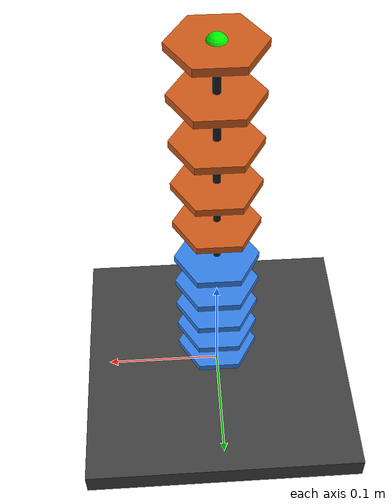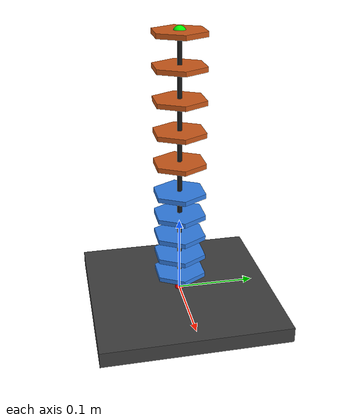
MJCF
<?xml version='1.0' encoding='utf-8'?>
<mujoco model="continuum_kinematic_generated">
  <compiler angle="radian" />
  <option timestep="0.01" gravity="0 0 0" />
  <default>
    <joint limited="true" damping="0" armature="0" />
    <geom contype="0" conaffinity="0" density="1000" />
  </default>
  <asset>
    <mesh name="hex_disk" file="../assets/hex_disk.stl" />
  </asset>
  <worldbody>
    <light name="top_light" pos="0 0 2" />
    <geom name="base_plate" type="box" pos="0 0 -0.01" size="0.12 0.12 0.01" rgba="0.25 0.25 0.25 1" />
    <body name="base" pos="0 0 0">
      <site name="base_site" pos="0 0 0" size="0.006" rgba="1 0 0 1" />
      <body name="sec2_u1" pos="0 0 0.026">
        <joint name="sec2_u1_bend_x" type="hinge" axis="1 0 0" range="-0.6 0.6" />
        <joint name="sec2_u1_bend_y" type="hinge" axis="0 1 0" range="-0.6 0.6" />
        <joint name="sec2_u1_slide_z" type="slide" axis="0 0 1" range="-0.03 0.03" />
        <geom name="sec2_u1_disk" type="mesh" mesh="hex_disk" rgba="0.2 0.5 0.9 1" />
        <geom name="sec2_u1_backbone" type="capsule" fromto="0 0 -0.026 0 0 0" size="0.003" rgba="0.1 0.1 0.1 1" />
        <body name="sec2_u2" pos="0 0 0.027">
          <joint name="sec2_u2_bend_x" type="hinge" axis="1 0 0" range="-0.6 0.6" />
          <joint name="sec2_u2_bend_y" type="hinge" axis="0 1 0" range="-0.6 0.6" />
          <joint name="sec2_u2_slide_z" type="slide" axis="0 0 1" range="-0.03 0.03" />
          <geom name="sec2_u2_disk" type="mesh" mesh="hex_disk" rgba="0.2 0.5 0.9 1" />
          <geom name="sec2_u2_backbone" type="capsule" fromto="0 0 -0.027 0 0 0" size="0.003" rgba="0.1 0.1 0.1 1" />
          <body name="sec2_u3" pos="0 0 0.028">
            <joint name="sec2_u3_bend_x" type="hinge" axis="1 0 0" range="-0.6 0.6" />
            <joint name="sec2_u3_bend_y" type="hinge" axis="0 1 0" range="-0.6 0.6" />
            <joint name="sec2_u3_slide_z" type="slide" axis="0 0 1" range="-0.03 0.03" />
            <geom name="sec2_u3_disk" type="mesh" mesh="hex_disk" rgba="0.2 0.5 0.9 1" />
            <geom name="sec2_u3_backbone" type="capsule" fromto="0 0 -0.028 0 0 0" size="0.003" rgba="0.1 0.1 0.1 1" />
            <body name="sec2_u4" pos="0 0 0.029">
              <joint name="sec2_u4_bend_x" type="hinge" axis="1 0 0" range="-0.6 0.6" />
              <joint name="sec2_u4_bend_y" type="hinge" axis="0 1 0" range="-0.6 0.6" />
              <joint name="sec2_u4_slide_z" type="slide" axis="0 0 1" range="-0.03 0.03" />
              <geom name="sec2_u4_disk" type="mesh" mesh="hex_disk" rgba="0.2 0.5 0.9 1" />
              <geom name="sec2_u4_backbone" type="capsule" fromto="0 0 -0.029 0 0 0" size="0.003" rgba="0.1 0.1 0.1 1" />
              <body name="sec2_u5" pos="0 0 0.03">
                <joint name="sec2_u5_bend_x" type="hinge" axis="1 0 0" range="-0.6 0.6" />
                <joint name="sec2_u5_bend_y" type="hinge" axis="0 1 0" range="-0.6 0.6" />
                <joint name="sec2_u5_slide_z" type="slide" axis="0 0 1" range="-0.03 0.03" />
                <geom name="sec2_u5_disk" type="mesh" mesh="hex_disk" rgba="0.2 0.5 0.9 1" />
                <geom name="sec2_u5_backbone" type="capsule" fromto="0 0 -0.03 0 0 0" size="0.003" rgba="0.1 0.1 0.1 1" />
                <body name="sec1_u1" pos="0 0 0.04">
                  <joint name="sec1_u1_bend_x" type="hinge" axis="1 0 0" range="-0.6 0.6" />
                  <joint name="sec1_u1_bend_y" type="hinge" axis="0 1 0" range="-0.6 0.6" />
                  <joint name="sec1_u1_slide_z" type="slide" axis="0 0 1" range="-0.03 0.03" />
                  <geom name="sec1_u1_disk" type="mesh" mesh="hex_disk" rgba="0.8 0.35 0.1 1" />
                  <geom name="sec1_u1_backbone" type="capsule" fromto="0 0 -0.04 0 0 0" size="0.003" rgba="0.1 0.1 0.1 1" />
                  <body name="sec1_u2" pos="0 0 0.04">
                    <joint name="sec1_u2_bend_x" type="hinge" axis="1 0 0" range="-0.6 0.6" />
                    <joint name="sec1_u2_bend_y" type="hinge" axis="0 1 0" range="-0.6 0.6" />
                    <joint name="sec1_u2_slide_z" type="slide" axis="0 0 1" range="-0.03 0.03" />
                    <geom name="sec1_u2_disk" type="mesh" mesh="hex_disk" rgba="0.8 0.35 0.1 1" />
                    <geom name="sec1_u2_backbone" type="capsule" fromto="0 0 -0.04 0 0 0" size="0.003" rgba="0.1 0.1 0.1 1" />
                    <body name="sec1_u3" pos="0 0 0.04">
                      <joint name="sec1_u3_bend_x" type="hinge" axis="1 0 0" range="-0.6 0.6" />
                      <joint name="sec1_u3_bend_y" type="hinge" axis="0 1 0" range="-0.6 0.6" />
                      <joint name="sec1_u3_slide_z" type="slide" axis="0 0 1" range="-0.03 0.03" />
                      <geom name="sec1_u3_disk" type="mesh" mesh="hex_disk" rgba="0.8 0.35 0.1 1" />
                      <geom name="sec1_u3_backbone" type="capsule" fromto="0 0 -0.04 0 0 0" size="0.003" rgba="0.1 0.1 0.1 1" />
                      <body name="sec1_u4" pos="0 0 0.04">
                        <joint name="sec1_u4_bend_x" type="hinge" axis="1 0 0" range="-0.6 0.6" />
                        <joint name="sec1_u4_bend_y" type="hinge" axis="0 1 0" range="-0.6 0.6" />
                        <joint name="sec1_u4_slide_z" type="slide" axis="0 0 1" range="-0.03 0.03" />
                        <geom name="sec1_u4_disk" type="mesh" mesh="hex_disk" rgba="0.8 0.35 0.1 1" />
                        <geom name="sec1_u4_backbone" type="capsule" fromto="0 0 -0.04 0 0 0" size="0.003" rgba="0.1 0.1 0.1 1" />
                        <body name="sec1_u5" pos="0 0 0.04">
                          <joint name="sec1_u5_bend_x" type="hinge" axis="1 0 0" range="-0.6 0.6" />
                          <joint name="sec1_u5_bend_y" type="hinge" axis="0 1 0" range="-0.6 0.6" />
                          <joint name="sec1_u5_slide_z" type="slide" axis="0 0 1" range="-0.03 0.03" />
                          <geom name="sec1_u5_disk" type="mesh" mesh="hex_disk" rgba="0.8 0.35 0.1 1" />
                          <geom name="sec1_u5_backbone" type="capsule" fromto="0 0 -0.04 0 0 0" size="0.003" rgba="0.1 0.1 0.1 1" />
                          <site name="end_site" pos="0 0 0" size="0.008" rgba="0 1 0 1" />
                        </body>
                      </body>
                    </body>
                  </body>
                </body>
              </body>
            </body>
          </body>
        </body>
      </body>
    </body>
  </worldbody>
</mujoco>
